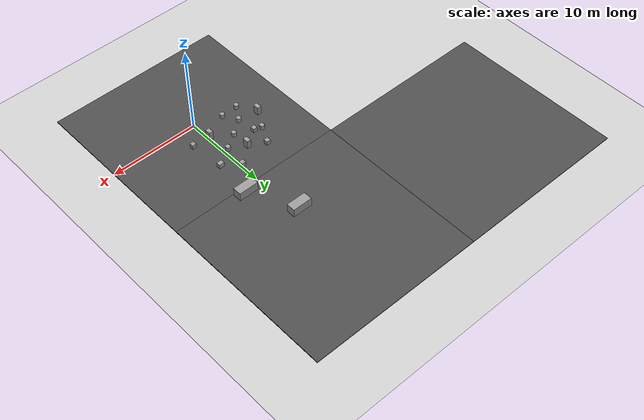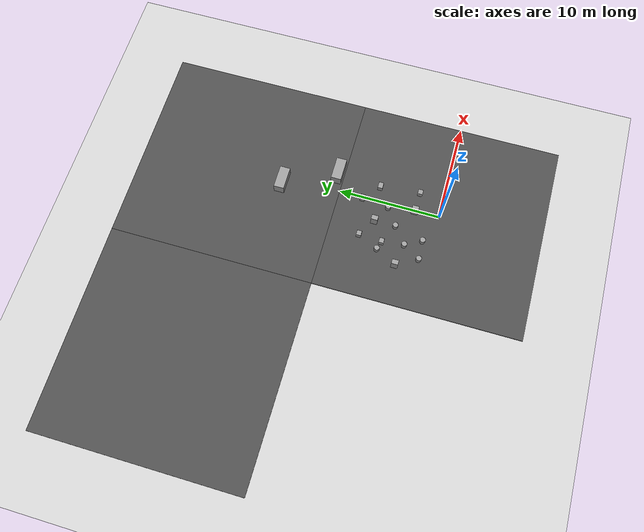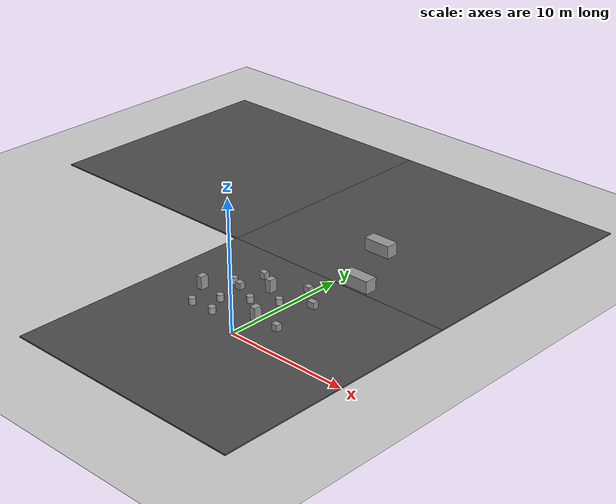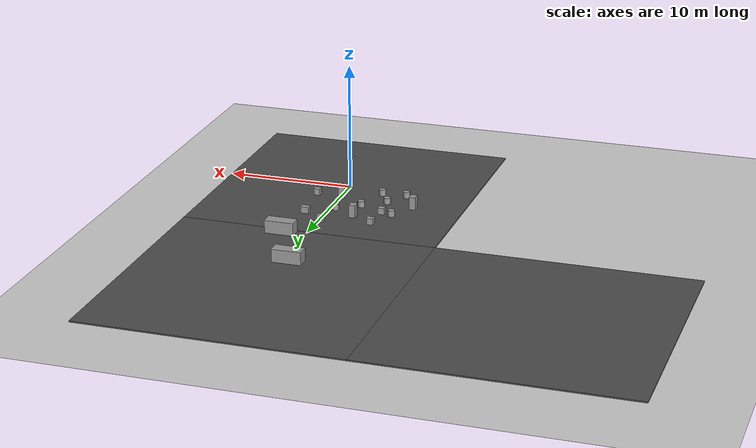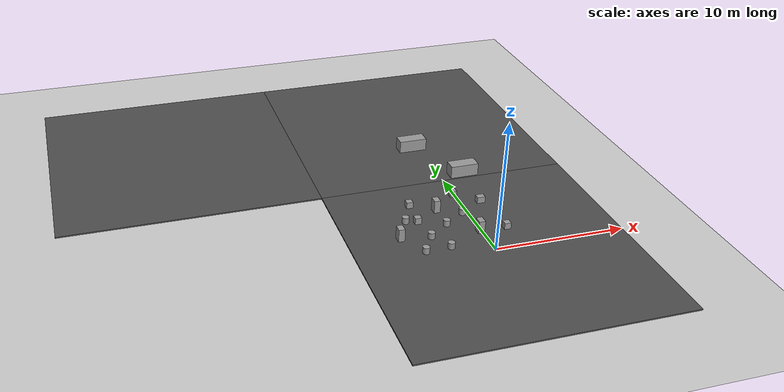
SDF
<sdf version="1.7">
 <world name="default">
  <model name="ground_plane">
   <static>1</static>
   <link name="link">
    <collision name="collision">
     <geometry><plane><normal>0 0 1</normal><size>100 100</size></plane></geometry>
     <surface>
      <contact><collide_bitmask>65535</collide_bitmask></contact>
      <friction><ode><mu>100</mu><mu2>50</mu2></ode></friction>
     </surface>
    </collision>
    <visual name="visual">
     <cast_shadows>0</cast_shadows>
     <geometry><plane><normal>0 0 1</normal><size>100 100</size></plane></geometry>
     <material>
      <script><uri>file://media/materials/scripts/gazebo.material</uri><name>Gazebo/Grey</name></script>
     </material>
    </visual>
   </link>
  </model>
  <model name="asphalt_plane">
   <static>1</static>
   <link name="link">
    <collision name="collision"><geometry><box><size>20 20 0.1</size></box></geometry></collision>
    <visual name="visual">
     <cast_shadows>0</cast_shadows>
     <geometry><box><size>20 20 0.1</size></box></geometry>
     <material>
      <script>
       <uri>model://asphalt_plane/materials/scripts</uri>
       <uri>model://asphalt_plane/materials/textures</uri>
       <name>vrc/asphalt</name>
      </script>
     </material>
    </visual>
   </link>
  </model>
  <model name="asphalt_plane_clone_4">
   <static>1</static>
   <link name="link">
    <collision name="collision"><geometry><box><size>20 20 0.1</size></box></geometry></collision>
    <visual name="visual">
     <cast_shadows>0</cast_shadows>
     <geometry><box><size>20 20 0.1</size></box></geometry>
     <material>
      <script>
       <uri>model://asphalt_plane/materials/scripts</uri>
       <uri>model://asphalt_plane/materials/textures</uri>
       <name>vrc/asphalt</name>
      </script>
     </material>
    </visual>
   </link>
   <pose>-20 20 0 0 -0 0</pose>
  </model>
  <model name="asphalt_plane_clone_5">
   <static>1</static>
   <link name="link">
    <collision name="collision"><geometry><box><size>20 20 0.1</size></box></geometry></collision>
    <visual name="visual">
     <cast_shadows>0</cast_shadows>
     <geometry><box><size>20 20 0.1</size></box></geometry>
     <material>
      <script>
       <uri>model://asphalt_plane/materials/scripts</uri>
       <uri>model://asphalt_plane/materials/textures</uri>
       <name>vrc/asphalt</name>
      </script>
     </material>
    </visual>
   </link>
   <pose>0 20 0 0 -0 0</pose>
  </model>
  <model name="unit_box_0_clone_0">
   <pose>1.49943 6.26197 0.301354 7e-06 -0 1e-06</pose>
   <link name="link">
    <inertial>
     <mass>1</mass>
     <inertia>
      <ixx>0.166667</ixx>
      <ixy>0</ixy>
      <ixz>0</ixz>
      <iyy>0.166667</iyy>
      <iyz>0</iyz>
      <izz>0.166667</izz>
     </inertia>
    </inertial>
    <collision name="collision">
     <geometry><box><size>0.622689 0.467832 0.502712</size></box></geometry>
    </collision>
    <visual name="visual">
     <geometry><box><size>0.622689 0.467832 0.502712</size></box></geometry>
     <material>
      <script><name>Gazebo/Grey</name><uri>file://media/materials/scripts/gazebo.material</uri></script>
     </material>
    </visual>
   </link>
  </model>
  <model name="unit_box_0_clone_1">
   <pose>1.88701 2.35733 0.301356 0 -0 1e-06</pose>
   <link name="link">
    <inertial>
     <mass>1</mass>
     <inertia>
      <ixx>0.166667</ixx>
      <ixy>0</ixy>
      <ixz>0</ixz>
      <iyy>0.166667</iyy>
      <iyz>0</iyz>
      <izz>0.166667</izz>
     </inertia>
    </inertial>
    <collision name="collision">
     <geometry><box><size>0.495294 0.467832 0.502712</size></box></geometry>
    </collision>
    <visual name="visual">
     <geometry><box><size>0.495294 0.467832 0.502712</size></box></geometry>
     <material>
      <script><name>Gazebo/Grey</name><uri>file://media/materials/scripts/gazebo.material</uri></script>
     </material>
    </visual>
   </link>
  </model>
  <model name="unit_cylinder">
   <pose>-3.88535 2.58839 0.294833 4e-06 -5e-06 0.000379</pose>
   <link name="link">
    <inertial>
     <mass>1</mass>
     <inertia><ixx>0.145833</ixx><ixy>0</ixy><ixz>0</ixz><iyy>0.145833</iyy><iyz>0</iyz><izz>0.125</izz></inertia>
    </inertial>
    <collision name="collision">
     <geometry><cylinder><radius>0.264047</radius><length>0.48967</length></cylinder></geometry>
    </collision>
    <visual name="visual">
     <geometry><cylinder><radius>0.264047</radius><length>0.48967</length></cylinder></geometry>
     <material>
      <script><name>Gazebo/Grey</name><uri>file://media/materials/scripts/gazebo.material</uri></script>
     </material>
    </visual>
   </link>
  </model>
  <model name="unit_cylinder_clone_0">
   <pose>-3 1 0.294839 -8e-06 1.1e-05 0.000354</pose>
   <link name="link">
    <inertial>
     <mass>1</mass>
     <inertia><ixx>0.145833</ixx><ixy>0</ixy><ixz>0</ixz><iyy>0.145833</iyy><iyz>0</iyz><izz>0.125</izz></inertia>
    </inertial>
    <collision name="collision">
     <geometry><cylinder><radius>0.264047</radius><length>0.48967</length></cylinder></geometry>
    </collision>
    <visual name="visual">
     <geometry><cylinder><radius>0.264047</radius><length>0.48967</length></cylinder></geometry>
     <material>
      <script><name>Gazebo/Grey</name><uri>file://media/materials/scripts/gazebo.material</uri></script>
     </material>
    </visual>
   </link>
  </model>
  <model name="unit_cylinder_clone_2">
   <pose>-2.20479 3.85762 0.294835 0 -0 9.2e-05</pose>
   <link name="link">
    <inertial>
     <mass>1</mass>
     <inertia><ixx>0.145833</ixx><ixy>0</ixy><ixz>0</ixz><iyy>0.145833</iyy><iyz>0</iyz><izz>0.125</izz></inertia>
    </inertial>
    <collision name="collision">
     <geometry><cylinder><radius>0.264047</radius><length>0.48967</length></cylinder></geometry>
    </collision>
    <visual name="visual">
     <geometry><cylinder><radius>0.264047</radius><length>0.48967</length></cylinder></geometry>
     <material>
      <script><name>Gazebo/Grey</name><uri>file://media/materials/scripts/gazebo.material</uri></script>
     </material>
    </visual>
   </link>
  </model>
  <model name="unit_cylinder_clone_3">
   <pose>-0.494252 5 0.294825 0 -0 9.4e-05</pose>
   <link name="link">
    <inertial>
     <mass>1</mass>
     <inertia><ixx>0.145833</ixx><ixy>0</ixy><ixz>0</ixz><iyy>0.145833</iyy><iyz>0</iyz><izz>0.125</izz></inertia>
    </inertial>
    <collision name="collision">
     <geometry><cylinder><radius>0.264047</radius><length>0.48967</length></cylinder></geometry>
    </collision>
    <visual name="visual">
     <geometry><cylinder><radius>0.264047</radius><length>0.48967</length></cylinder></geometry>
     <material>
      <script><name>Gazebo/Grey</name><uri>file://media/materials/scripts/gazebo.material</uri></script>
     </material>
    </visual>
   </link>
  </model>
  <model name="unit_cylinder_clone_14">
   <pose>-4.99999 5 0.294825 0 -0 0.000123</pose>
   <link name="link">
    <inertial>
     <mass>1</mass>
     <inertia><ixx>0.145833</ixx><ixy>0</ixy><ixz>0</ixz><iyy>0.145833</iyy><iyz>0</iyz><izz>0.125</izz></inertia>
    </inertial>
    <collision name="collision">
     <geometry><cylinder><radius>0.264047</radius><length>0.48967</length></cylinder></geometry>
    </collision>
    <visual name="visual">
     <geometry><cylinder><radius>0.264047</radius><length>0.48967</length></cylinder></geometry>
     <material>
      <script><name>Gazebo/Grey</name><uri>file://media/materials/scripts/gazebo.material</uri></script>
     </material>
    </visual>
   </link>
  </model>
  <model name="unit_cylinder_clone_16">
   <pose>-4.94241 0.924892 0.294833 -3e-06 5e-06 0.000199</pose>
   <link name="link">
    <inertial>
     <mass>1</mass>
     <inertia><ixx>0.145833</ixx><ixy>0</ixy><ixz>0</ixz><iyy>0.145833</iyy><iyz>0</iyz><izz>0.125</izz></inertia>
    </inertial>
    <collision name="collision">
     <geometry><cylinder><radius>0.264047</radius><length>0.48967</length></cylinder></geometry>
    </collision>
    <visual name="visual">
     <geometry><cylinder><radius>0.264047</radius><length>0.48967</length></cylinder></geometry>
     <material>
      <script><name>Gazebo/Grey</name><uri>file://media/materials/scripts/gazebo.material</uri></script>
     </material>
    </visual>
   </link>
  </model>
  <model name="unit_box_0_clone_1_clone">
   <pose>-4.15621 4.74188 0.301356 0 -0 1e-06</pose>
   <link name="link">
    <inertial>
     <mass>1</mass>
     <inertia>
      <ixx>0.166667</ixx>
      <ixy>0</ixy>
      <ixz>0</ixz>
      <iyy>0.166667</iyy>
      <iyz>0</iyz>
      <izz>0.166667</izz>
     </inertia>
    </inertial>
    <collision name="collision">
     <geometry><box><size>0.495294 0.467832 0.502712</size></box></geometry>
    </collision>
    <visual name="visual">
     <geometry><box><size>0.495294 0.467832 0.502712</size></box></geometry>
     <material>
      <script><name>Gazebo/Grey</name><uri>file://media/materials/scripts/gazebo.material</uri></script>
     </material>
    </visual>
   </link>
  </model>
  <model name="unit_box_0_clone_1_clone_0">
   <pose>-4 7 0.301356 0 -0 1e-06</pose>
   <link name="link">
    <inertial>
     <mass>1</mass>
     <inertia>
      <ixx>0.166667</ixx>
      <ixy>0</ixy>
      <ixz>0</ixz>
      <iyy>0.166667</iyy>
      <iyz>0</iyz>
      <izz>0.166667</izz>
     </inertia>
    </inertial>
    <collision name="collision">
     <geometry><box><size>0.495294 0.467832 0.502712</size></box></geometry>
    </collision>
    <visual name="visual">
     <geometry><box><size>0.495294 0.467832 0.502712</size></box></geometry>
     <material>
      <script><name>Gazebo/Grey</name><uri>file://media/materials/scripts/gazebo.material</uri></script>
     </material>
    </visual>
   </link>
  </model>
  <model name="unit_box_0_clone_1_clone_1">
   <pose>-0.198532 7.63401 0.301356 0 -0 1e-06</pose>
   <link name="link">
    <inertial>
     <mass>1</mass>
     <inertia>
      <ixx>0.166667</ixx>
      <ixy>0</ixy>
      <ixz>0</ixz>
      <iyy>0.166667</iyy>
      <iyz>0</iyz>
      <izz>0.166667</izz>
     </inertia>
    </inertial>
    <collision name="collision">
     <geometry><box><size>0.495294 0.467832 0.502712</size></box></geometry>
    </collision>
    <visual name="visual">
     <geometry><box><size>0.495294 0.467832 0.502712</size></box></geometry>
     <material>
      <script><name>Gazebo/Grey</name><uri>file://media/materials/scripts/gazebo.material</uri></script>
     </material>
    </visual>
   </link>
  </model>
  <model name="unit_box_3">
   <pose>-0.185436 2.4314 0.55 0 -0 0</pose>
   <link name="link">
    <inertial>
     <mass>1</mass>
     <inertia>
      <ixx>0.166667</ixx>
      <ixy>0</ixy>
      <ixz>0</ixz>
      <iyy>0.166667</iyy>
      <iyz>0</iyz>
      <izz>0.166667</izz>
     </inertia>
    </inertial>
    <collision name="collision"><geometry><box><size>0.473217 0.637104 1</size></box></geometry></collision>
    <visual name="visual">
     <geometry><box><size>0.473217 0.637104 1</size></box></geometry>
     <material>
      <script><name>Gazebo/Grey</name><uri>file://media/materials/scripts/gazebo.material</uri></script>
     </material>
    </visual>
   </link>
  </model>
  <model name="unit_box_3_clone">
   <pose>-2.24652 5.9397 0.55 0 -0 0</pose>
   <link name="link">
    <inertial>
     <mass>1</mass>
     <inertia>
      <ixx>0.166667</ixx>
      <ixy>0</ixy>
      <ixz>0</ixz>
      <iyy>0.166667</iyy>
      <iyz>0</iyz>
      <izz>0.166667</izz>
     </inertia>
    </inertial>
    <collision name="collision"><geometry><box><size>0.473217 0.637104 1</size></box></geometry></collision>
    <visual name="visual">
     <geometry><box><size>0.473217 0.637104 1</size></box></geometry>
     <material>
      <script><name>Gazebo/Grey</name><uri>file://media/materials/scripts/gazebo.material</uri></script>
     </material>
    </visual>
   </link>
  </model>
  <model name="unit_box_3_clone_2">
   <pose>-6.12917 2.98269 0.55 0 -0 0</pose>
   <link name="link">
    <inertial>
     <mass>1</mass>
     <inertia>
      <ixx>0.166667</ixx>
      <ixy>0</ixy>
      <ixz>0</ixz>
      <iyy>0.166667</iyy>
      <iyz>0</iyz>
      <izz>0.166667</izz>
     </inertia>
    </inertial>
    <collision name="collision"><geometry><box><size>0.473217 0.637104 1</size></box></geometry></collision>
    <visual name="visual">
     <geometry><box><size>0.473217 0.637104 1</size></box></geometry>
     <material>
      <script><name>Gazebo/Grey</name><uri>file://media/materials/scripts/gazebo.material</uri></script>
     </material>
    </visual>
   </link>
  </model>
  <model name="unit_box_5">
   <pose>1.86699 10.6312 0.549967 0 2.9e-05 0</pose>
   <link name="link">
    <inertial>
     <mass>1</mass>
     <inertia>
      <ixx>0.166667</ixx>
      <ixy>0</ixy>
      <ixz>0</ixz>
      <iyy>0.166667</iyy>
      <iyz>0</iyz>
      <izz>0.166667</izz>
     </inertia>
    </inertial>
    <collision name="collision"><geometry><box><size>2.25366 1 1</size></box></geometry></collision>
    <visual name="visual">
     <geometry><box><size>2.25366 1 1</size></box></geometry>
     <material>
      <script><name>Gazebo/Grey</name><uri>file://media/materials/scripts/gazebo.material</uri></script>
     </material>
    </visual>
   </link>
  </model>
  <model name="unit_box_5_clone">
   <pose>-0.608344 15.7172 0.549967 0 -2.9e-05 0</pose>
   <link name="link">
    <inertial>
     <mass>1</mass>
     <inertia>
      <ixx>0.166667</ixx>
      <ixy>0</ixy>
      <ixz>0</ixz>
      <iyy>0.166667</iyy>
      <iyz>0</iyz>
      <izz>0.166667</izz>
     </inertia>
    </inertial>
    <collision name="collision"><geometry><box><size>2.25366 1 1</size></box></geometry></collision>
    <visual name="visual">
     <geometry><box><size>2.25366 1 1</size></box></geometry>
     <material>
      <script><name>Gazebo/Grey</name><uri>file://media/materials/scripts/gazebo.material</uri></script>
     </material>
    </visual>
   </link>
  </model>
 </world>
</sdf>
